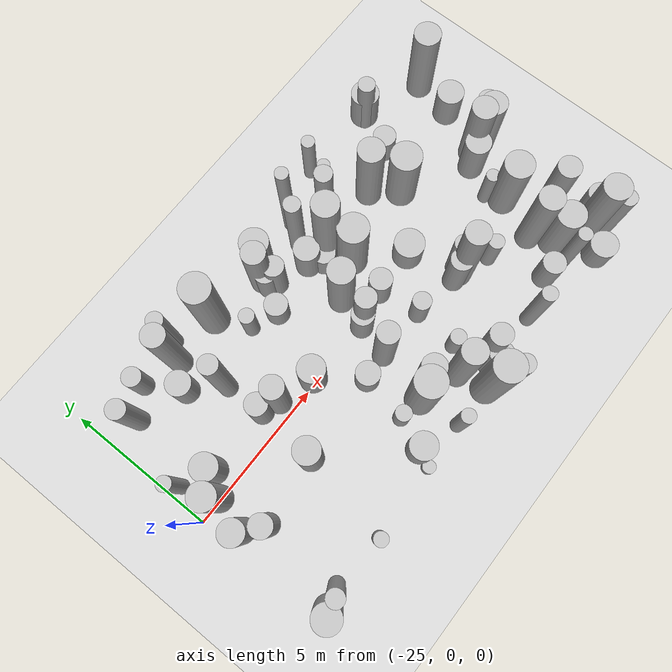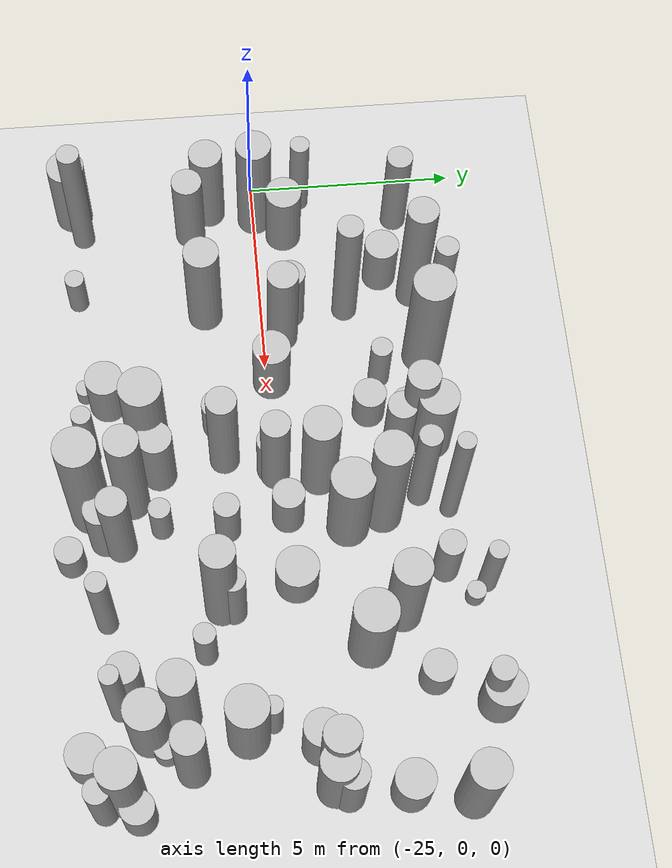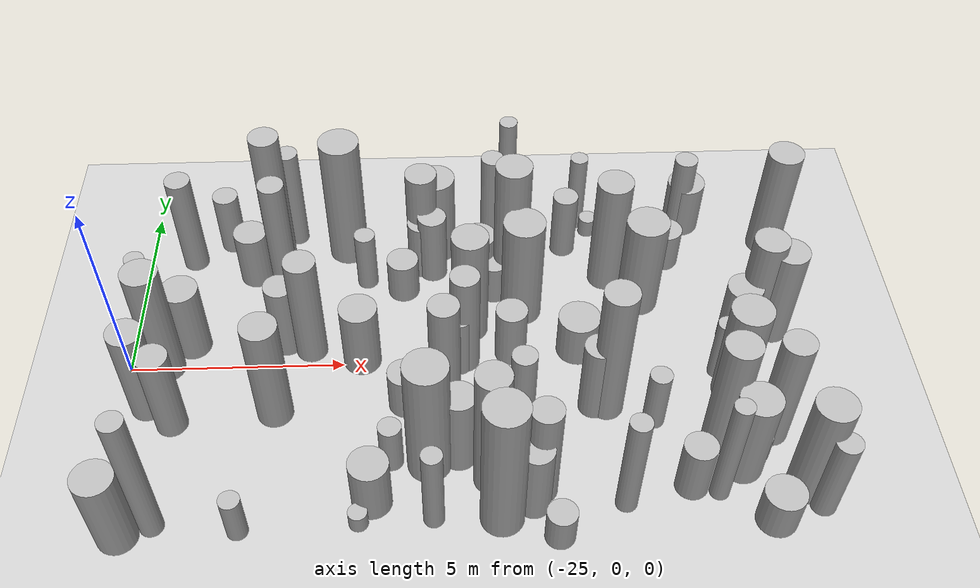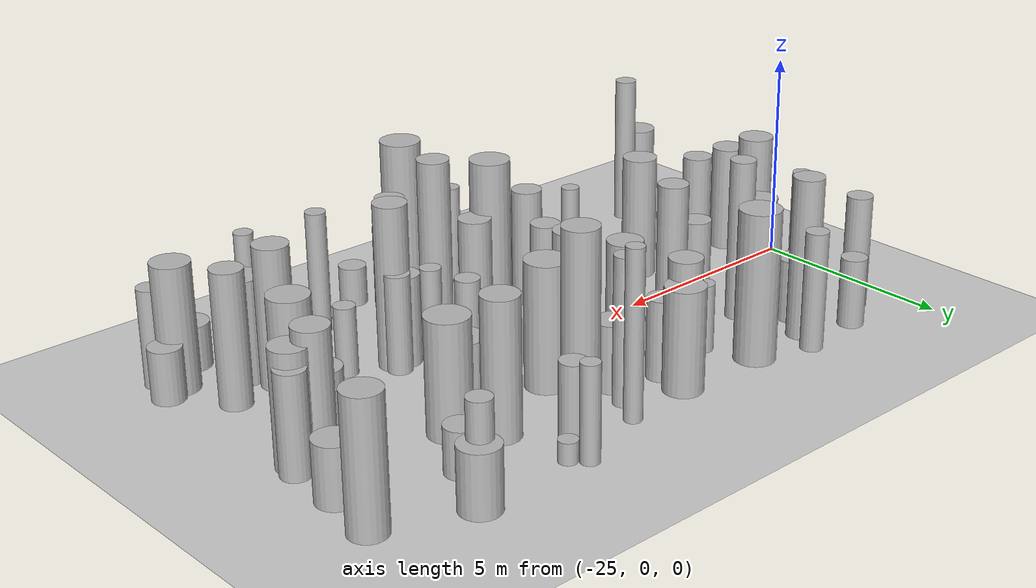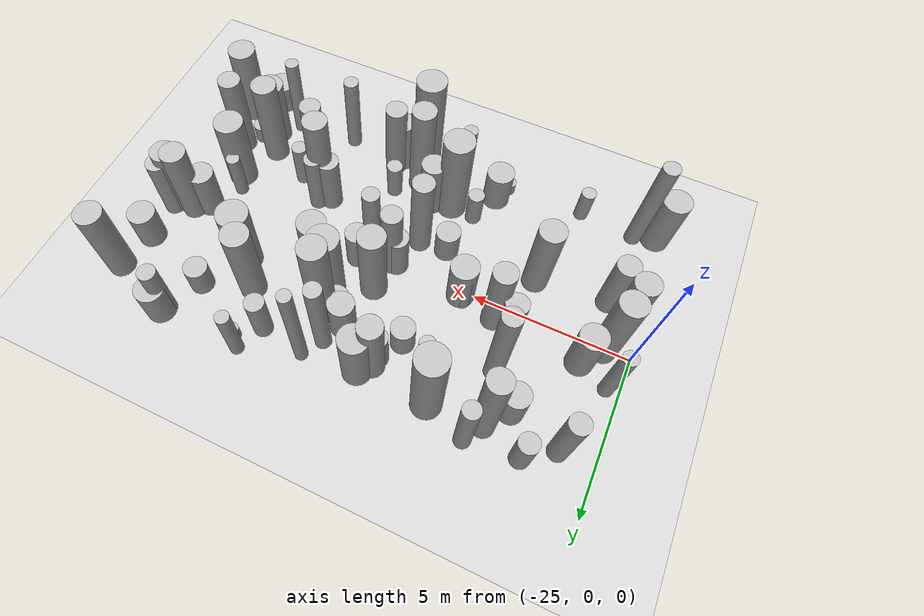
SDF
<sdf version="1.4">
 <world name="default">
  <include><uri>model://ground_plane</uri></include>
  <include><uri>model://sun</uri></include>
  <model name="forest">
   <static>true</static>
   <link name="cylinder1">
    <pose>-10.372897658311741 -2.2514441776818392 1.5751173394590154 0 0 0</pose>
    <visual name="visual">
     <geometry>
      <cylinder><radius>0.3677514361477285</radius><length>3.150234678918031</length></cylinder>
     </geometry>
    </visual>
    <collision name="collision">
     <geometry>
      <cylinder><radius>0.3677514361477285</radius><length>3.150234678918031</length></cylinder>
     </geometry>
     <max_contacts>0</max_contacts>
    </collision>
   </link>
   <link name="cylinder2">
    <pose>-21.35660350977835 4.323131204310551 1.4216955965478135 0 0 0</pose>
    <visual name="visual">
     <geometry>
      <cylinder><radius>0.2657979999063645</radius><length>2.843391193095627</length></cylinder>
     </geometry>
    </visual>
    <collision name="collision">
     <geometry>
      <cylinder><radius>0.2657979999063645</radius><length>2.843391193095627</length></cylinder>
     </geometry>
     <max_contacts>0</max_contacts>
    </collision>
   </link>
   <link name="cylinder3">
    <pose>-15.31565662004047 -4.739865447816892 0.4728887307520938 0 0 0</pose>
    <visual name="visual">
     <geometry>
      <cylinder><radius>0.3305696775943656</radius><length>0.9457774615041876</length></cylinder>
     </geometry>
    </visual>
    <collision name="collision">
     <geometry>
      <cylinder><radius>0.3305696775943656</radius><length>0.9457774615041876</length></cylinder>
     </geometry>
     <max_contacts>0</max_contacts>
    </collision>
   </link>
   <link name="cylinder8">
    <pose>-17.6399835858916 -1.1181731487474975 1.6408397410630924 0 0 0</pose>
    <visual name="visual">
     <geometry>
      <cylinder><radius>0.34879013332269104</radius><length>3.2816794821261848</length></cylinder>
     </geometry>
    </visual>
    <collision name="collision">
     <geometry>
      <cylinder><radius>0.34879013332269104</radius><length>3.2816794821261848</length></cylinder>
     </geometry>
     <max_contacts>0</max_contacts>
    </collision>
   </link>
   <link name="cylinder9">
    <pose>-21.418567242276666 2.0413545910556223 1.9441923723828283 0 0 0</pose>
    <visual name="visual">
     <geometry>
      <cylinder><radius>0.3000890618956727</radius><length>3.8883847447656565</length></cylinder>
     </geometry>
    </visual>
    <collision name="collision">
     <geometry>
      <cylinder><radius>0.3000890618956727</radius><length>3.8883847447656565</length></cylinder>
     </geometry>
     <max_contacts>0</max_contacts>
    </collision>
   </link>
   <link name="cylinder14">
    <pose>-21.72910784840053 3.717128631614173 1.9317601741943404 0 0 0</pose>
    <visual name="visual">
     <geometry>
      <cylinder><radius>0.3604419685028365</radius><length>3.863520348388681</length></cylinder>
     </geometry>
    </visual>
    <collision name="collision">
     <geometry>
      <cylinder><radius>0.3604419685028365</radius><length>3.863520348388681</length></cylinder>
     </geometry>
     <max_contacts>0</max_contacts>
    </collision>
   </link>
   <link name="cylinder21">
    <pose>-12.031961741088226 3.194976193978807 0.5398428350440663 0 0 0</pose>
    <visual name="visual">
     <geometry>
      <cylinder><radius>0.3801661684491565</radius><length>1.0796856700881325</length></cylinder>
     </geometry>
    </visual>
    <collision name="collision">
     <geometry>
      <cylinder><radius>0.3801661684491565</radius><length>1.0796856700881325</length></cylinder>
     </geometry>
     <max_contacts>0</max_contacts>
    </collision>
   </link>
   <link name="cylinder28">
    <pose>-22.999633626282684 4.128262922538253 0.8400408961245629 0 0 0</pose>
    <visual name="visual">
     <geometry>
      <cylinder><radius>0.3103891382681767</radius><length>1.6800817922491258</length></cylinder>
     </geometry>
    </visual>
    <collision name="collision">
     <geometry>
      <cylinder><radius>0.3103891382681767</radius><length>1.6800817922491258</length></cylinder>
     </geometry>
     <max_contacts>0</max_contacts>
    </collision>
   </link>
   <link name="cylinder32">
    <pose>-9.584879010355568 1.0462139949960854 1.174111556515456 0 0 0</pose>
    <visual name="visual">
     <geometry>
      <cylinder><radius>0.3442459100977423</radius><length>2.348223113030912</length></cylinder>
     </geometry>
    </visual>
    <collision name="collision">
     <geometry>
      <cylinder><radius>0.3442459100977423</radius><length>2.348223113030912</length></cylinder>
     </geometry>
     <max_contacts>0</max_contacts>
    </collision>
   </link>
   <link name="cylinder35">
    <pose>-13.98275207800716 -1.4099963655659433 1.930059043675803 0 0 0</pose>
    <visual name="visual">
     <geometry>
      <cylinder><radius>0.3846217041713943</radius><length>3.860118087351606</length></cylinder>
     </geometry>
    </visual>
    <collision name="collision">
     <geometry>
      <cylinder><radius>0.3846217041713943</radius><length>3.860118087351606</length></cylinder>
     </geometry>
     <max_contacts>0</max_contacts>
    </collision>
   </link>
   <link name="cylinder39">
    <pose>-16.748765194154092 2.621964411362523 0.8012393157230397 0 0 0</pose>
    <visual name="visual">
     <geometry>
      <cylinder><radius>0.4158010496673338</radius><length>1.6024786314460795</length></cylinder>
     </geometry>
    </visual>
    <collision name="collision">
     <geometry>
      <cylinder><radius>0.4158010496673338</radius><length>1.6024786314460795</length></cylinder>
     </geometry>
     <max_contacts>0</max_contacts>
    </collision>
   </link>
   <link name="cylinder43">
    <pose>-19.71796774710507 0.3110879446256192 0.7624264279020374 0 0 0</pose>
    <visual name="visual">
     <geometry>
      <cylinder><radius>0.2364860129090609</radius><length>1.5248528558040748</length></cylinder>
     </geometry>
    </visual>
    <collision name="collision">
     <geometry>
      <cylinder><radius>0.2364860129090609</radius><length>1.5248528558040748</length></cylinder>
     </geometry>
     <max_contacts>0</max_contacts>
    </collision>
   </link>
   <link name="cylinder44">
    <pose>-17.012740371954205 1.0431191071362802 1.5581251016779272 0 0 0</pose>
    <visual name="visual">
     <geometry>
      <cylinder><radius>0.4273241364926528</radius><length>3.1162502033558543</length></cylinder>
     </geometry>
    </visual>
    <collision name="collision">
     <geometry>
      <cylinder><radius>0.4273241364926528</radius><length>3.1162502033558543</length></cylinder>
     </geometry>
     <max_contacts>0</max_contacts>
    </collision>
   </link>
   <link name="cylinder57">
    <pose>-15.966854620602138 2.4335190814512897 1.9659533005793128 0 0 0</pose>
    <visual name="visual">
     <geometry>
      <cylinder><radius>0.42633022457370945</radius><length>3.9319066011586257</length></cylinder>
     </geometry>
    </visual>
    <collision name="collision">
     <geometry>
      <cylinder><radius>0.42633022457370945</radius><length>3.9319066011586257</length></cylinder>
     </geometry>
     <max_contacts>0</max_contacts>
    </collision>
   </link>
   <link name="cylinder64">
    <pose>-22.082502001315603 -4.403343819644552 0.613707244978996 0 0 0</pose>
    <visual name="visual">
     <geometry>
      <cylinder><radius>0.2333413649471318</radius><length>1.227414489957992</length></cylinder>
     </geometry>
    </visual>
    <collision name="collision">
     <geometry>
      <cylinder><radius>0.2333413649471318</radius><length>1.227414489957992</length></cylinder>
     </geometry>
     <max_contacts>0</max_contacts>
    </collision>
   </link>
   <link name="cylinder66">
    <pose>-17.37058964714589 -2.6521520822557063 1.0960785140175782 0 0 0</pose>
    <visual name="visual">
     <geometry>
      <cylinder><radius>0.3983850361801018</radius><length>2.1921570280351563</length></cylinder>
     </geometry>
    </visual>
    <collision name="collision">
     <geometry>
      <cylinder><radius>0.3983850361801018</radius><length>2.1921570280351563</length></cylinder>
     </geometry>
     <max_contacts>0</max_contacts>
    </collision>
   </link>
   <link name="cylinder67">
    <pose>-9.769559506569225 0.7704495770269446 1.343385655164318 0 0 0</pose>
    <visual name="visual">
     <geometry>
      <cylinder><radius>0.4213548860620411</radius><length>2.686771310328636</length></cylinder>
     </geometry>
    </visual>
    <collision name="collision">
     <geometry>
      <cylinder><radius>0.4213548860620411</radius><length>2.686771310328636</length></cylinder>
     </geometry>
     <max_contacts>0</max_contacts>
    </collision>
   </link>
   <link name="cylinder68">
    <pose>-10.253609969160799 0.8501133190586216 1.4957817800127082 0 0 0</pose>
    <visual name="visual">
     <geometry>
      <cylinder><radius>0.4072376539695209</radius><length>2.9915635600254165</length></cylinder>
     </geometry>
    </visual>
    <collision name="collision">
     <geometry>
      <cylinder><radius>0.4072376539695209</radius><length>2.9915635600254165</length></cylinder>
     </geometry>
     <max_contacts>0</max_contacts>
    </collision>
   </link>
   <link name="cylinder74">
    <pose>-15.814036391748687 -3.9410867435343544 1.0164899861445449 0 0 0</pose>
    <visual name="visual">
     <geometry>
      <cylinder><radius>0.3721718367374985</radius><length>2.0329799722890898</length></cylinder>
     </geometry>
    </visual>
    <collision name="collision">
     <geometry>
      <cylinder><radius>0.3721718367374985</radius><length>2.0329799722890898</length></cylinder>
     </geometry>
     <max_contacts>0</max_contacts>
    </collision>
   </link>
   <link name="cylinder76">
    <pose>-11.383243736141392 4.5109272070521005 0.7206859160088545 0 0 0</pose>
    <visual name="visual">
     <geometry>
      <cylinder><radius>0.46101447124008627</radius><length>1.441371832017709</length></cylinder>
     </geometry>
    </visual>
    <collision name="collision">
     <geometry>
      <cylinder><radius>0.46101447124008627</radius><length>1.441371832017709</length></cylinder>
     </geometry>
     <max_contacts>0</max_contacts>
    </collision>
   </link>
   <link name="cylinder78">
    <pose>-18.608237049293574 2.349809017381528 0.5510838272784618 0 0 0</pose>
    <visual name="visual">
     <geometry>
      <cylinder><radius>0.3822267673320422</radius><length>1.1021676545569237</length></cylinder>
     </geometry>
    </visual>
    <collision name="collision">
     <geometry>
      <cylinder><radius>0.3822267673320422</radius><length>1.1021676545569237</length></cylinder>
     </geometry>
     <max_contacts>0</max_contacts>
    </collision>
   </link>
   <link name="cylinder79">
    <pose>-14.160204888733425 4.617581358205619 1.1128946065807324 0 0 0</pose>
    <visual name="visual">
     <geometry>
      <cylinder><radius>0.21860928002505953</radius><length>2.2257892131614647</length></cylinder>
     </geometry>
    </visual>
    <collision name="collision">
     <geometry>
      <cylinder><radius>0.21860928002505953</radius><length>2.2257892131614647</length></cylinder>
     </geometry>
     <max_contacts>0</max_contacts>
    </collision>
   </link>
   <link name="cylinder83">
    <pose>-18.108542652122683 3.4148444649810408 1.445654301262922 0 0 0</pose>
    <visual name="visual">
     <geometry>
      <cylinder><radius>0.38112671923198294</radius><length>2.891308602525844</length></cylinder>
     </geometry>
    </visual>
    <collision name="collision">
     <geometry>
      <cylinder><radius>0.38112671923198294</radius><length>2.891308602525844</length></cylinder>
     </geometry>
     <max_contacts>0</max_contacts>
    </collision>
   </link>
   <link name="cylinder84">
    <pose>-16.07810474643923 0.25014213677787644 0.7625150647929921 0 0 0</pose>
    <visual name="visual">
     <geometry>
      <cylinder><radius>0.37070595839633025</radius><length>1.5250301295859843</length></cylinder>
     </geometry>
    </visual>
    <collision name="collision">
     <geometry>
      <cylinder><radius>0.37070595839633025</radius><length>1.5250301295859843</length></cylinder>
     </geometry>
     <max_contacts>0</max_contacts>
    </collision>
   </link>
   <link name="cylinder85">
    <pose>-18.12529728588368 3.1314375955831135 0.7846715255426591 0 0 0</pose>
    <visual name="visual">
     <geometry>
      <cylinder><radius>0.35187008169221745</radius><length>1.5693430510853181</length></cylinder>
     </geometry>
    </visual>
    <collision name="collision">
     <geometry>
      <cylinder><radius>0.35187008169221745</radius><length>1.5693430510853181</length></cylinder>
     </geometry>
     <max_contacts>0</max_contacts>
    </collision>
   </link>
   <link name="cylinder90">
    <pose>-16.379598077183523 2.2488449342389805 0.5465454976978354 0 0 0</pose>
    <visual name="visual">
     <geometry>
      <cylinder><radius>0.38060296094125545</radius><length>1.093090995395671</length></cylinder>
     </geometry>
    </visual>
    <collision name="collision">
     <geometry>
      <cylinder><radius>0.38060296094125545</radius><length>1.093090995395671</length></cylinder>
     </geometry>
     <max_contacts>0</max_contacts>
    </collision>
   </link>
   <link name="cylinder95">
    <pose>-23.895843019327668 -4.2280982885799165 1.8820095768581733 0 0 0</pose>
    <visual name="visual">
     <geometry>
      <cylinder><radius>0.26500982018076513</radius><length>3.7640191537163465</length></cylinder>
     </geometry>
    </visual>
    <collision name="collision">
     <geometry>
      <cylinder><radius>0.26500982018076513</radius><length>3.7640191537163465</length></cylinder>
     </geometry>
     <max_contacts>0</max_contacts>
    </collision>
   </link>
   <link name="cylinder96">
    <pose>-21.51850971061447 -1.3422147471543666 1.5119820932744217 0 0 0</pose>
    <visual name="visual">
     <geometry>
      <cylinder><radius>0.4138400525968138</radius><length>3.0239641865488434</length></cylinder>
     </geometry>
    </visual>
    <collision name="collision">
     <geometry>
      <cylinder><radius>0.4138400525968138</radius><length>3.0239641865488434</length></cylinder>
     </geometry>
     <max_contacts>0</max_contacts>
    </collision>
   </link>
   <link name="cylinder97">
    <pose>-10.70075296204921 -4.4935738668824445 0.5298968019769277 0 0 0</pose>
    <visual name="visual">
     <geometry>
      <cylinder><radius>0.4510335230470263</radius><length>1.0597936039538554</length></cylinder>
     </geometry>
    </visual>
    <collision name="collision">
     <geometry>
      <cylinder><radius>0.4510335230470263</radius><length>1.0597936039538554</length></cylinder>
     </geometry>
     <max_contacts>0</max_contacts>
    </collision>
   </link>
   <link name="cylinder98">
    <pose>-16.502737827829627 -4.254905252396982 1.9555405175638287 0 0 0</pose>
    <visual name="visual">
     <geometry>
      <cylinder><radius>0.4796865917493809</radius><length>3.9110810351276575</length></cylinder>
     </geometry>
    </visual>
    <collision name="collision">
     <geometry>
      <cylinder><radius>0.4796865917493809</radius><length>3.9110810351276575</length></cylinder>
     </geometry>
     <max_contacts>0</max_contacts>
    </collision>
   </link>
   <link name="cylinder106">
    <pose>-23.893410646277335 3.501970404676122 1.387999228371254 0 0 0</pose>
    <visual name="visual">
     <geometry>
      <cylinder><radius>0.3066898569023757</radius><length>2.775998456742508</length></cylinder>
     </geometry>
    </visual>
    <collision name="collision">
     <geometry>
      <cylinder><radius>0.3066898569023757</radius><length>2.775998456742508</length></cylinder>
     </geometry>
     <max_contacts>0</max_contacts>
    </collision>
   </link>
   <link name="cylinder108">
    <pose>-23.829874784142525 -1.5747651771766904 1.2037131255152091 0 0 0</pose>
    <visual name="visual">
     <geometry>
      <cylinder><radius>0.3624447436565988</radius><length>2.4074262510304183</length></cylinder>
     </geometry>
    </visual>
    <collision name="collision">
     <geometry>
      <cylinder><radius>0.3624447436565988</radius><length>2.4074262510304183</length></cylinder>
     </geometry>
     <max_contacts>0</max_contacts>
    </collision>
   </link>
   <link name="cylinder109">
    <pose>-11.793365492406432 -3.7727641679153443 1.5415852262171064 0 0 0</pose>
    <visual name="visual">
     <geometry>
      <cylinder><radius>0.21869972268366522</radius><length>3.0831704524342127</length></cylinder>
     </geometry>
    </visual>
    <collision name="collision">
     <geometry>
      <cylinder><radius>0.21869972268366522</radius><length>3.0831704524342127</length></cylinder>
     </geometry>
     <max_contacts>0</max_contacts>
    </collision>
   </link>
   <link name="cylinder110">
    <pose>-19.270642421842116 -3.7800901301655907 0.738888708003151 0 0 0</pose>
    <visual name="visual">
     <geometry>
      <cylinder><radius>0.44078350050917364</radius><length>1.477777416006302</length></cylinder>
     </geometry>
    </visual>
    <collision name="collision">
     <geometry>
      <cylinder><radius>0.44078350050917364</radius><length>1.477777416006302</length></cylinder>
     </geometry>
     <max_contacts>0</max_contacts>
    </collision>
   </link>
   <link name="cylinder111">
    <pose>-14.552662349414636 3.7103574064113385 0.8955943260405022 0 0 0</pose>
    <visual name="visual">
     <geometry>
      <cylinder><radius>0.3077023302518154</radius><length>1.7911886520810043</length></cylinder>
     </geometry>
    </visual>
    <collision name="collision">
     <geometry>
      <cylinder><radius>0.3077023302518154</radius><length>1.7911886520810043</length></cylinder>
     </geometry>
     <max_contacts>0</max_contacts>
    </collision>
   </link>
   <link name="cylinder116">
    <pose>-9.331090238398154 3.709309955117039 1.5171889855288772 0 0 0</pose>
    <visual name="visual">
     <geometry>
      <cylinder><radius>0.43068877749872103</radius><length>3.0343779710577543</length></cylinder>
     </geometry>
    </visual>
    <collision name="collision">
     <geometry>
      <cylinder><radius>0.43068877749872103</radius><length>3.0343779710577543</length></cylinder>
     </geometry>
     <max_contacts>0</max_contacts>
    </collision>
   </link>
   <link name="cylinder118">
    <pose>-13.833727527082107 -3.9867885429856975 1.4684590824791435 0 0 0</pose>
    <visual name="visual">
     <geometry>
      <cylinder><radius>0.2405756567187885</radius><length>2.936918164958287</length></cylinder>
     </geometry>
    </visual>
    <collision name="collision">
     <geometry>
      <cylinder><radius>0.2405756567187885</radius><length>2.936918164958287</length></cylinder>
     </geometry>
     <max_contacts>0</max_contacts>
    </collision>
   </link>
   <link name="cylinder120">
    <pose>-18.030748601132284 -2.8542827955766947 1.7192518039806988 0 0 0</pose>
    <visual name="visual">
     <geometry>
      <cylinder><radius>0.487368415609674</radius><length>3.4385036079613975</length></cylinder>
     </geometry>
    </visual>
    <collision name="collision">
     <geometry>
      <cylinder><radius>0.487368415609674</radius><length>3.4385036079613975</length></cylinder>
     </geometry>
     <max_contacts>0</max_contacts>
    </collision>
   </link>
   <link name="cylinder122">
    <pose>-11.527730041840844 4.367370500037939 1.1604866353640482 0 0 0</pose>
    <visual name="visual">
     <geometry>
      <cylinder><radius>0.27969637668919556</radius><length>2.3209732707280963</length></cylinder>
     </geometry>
    </visual>
    <collision name="collision">
     <geometry>
      <cylinder><radius>0.27969637668919556</radius><length>2.3209732707280963</length></cylinder>
     </geometry>
     <max_contacts>0</max_contacts>
    </collision>
   </link>
   <link name="cylinder123">
    <pose>-19.542358971119654 -4.300156067876012 0.23278447225285476 0 0 0</pose>
    <visual name="visual">
     <geometry>
      <cylinder><radius>0.21340984291934115</radius><length>0.4655689445057095</length></cylinder>
     </geometry>
    </visual>
    <collision name="collision">
     <geometry>
      <cylinder><radius>0.21340984291934115</radius><length>0.4655689445057095</length></cylinder>
     </geometry>
     <max_contacts>0</max_contacts>
    </collision>
   </link>
   <link name="cylinder124">
    <pose>-18.549845659216757 -1.1888499416494658 0.5839612516701087 0 0 0</pose>
    <visual name="visual">
     <geometry>
      <cylinder><radius>0.39211995531191624</radius><length>1.1679225033402174</length></cylinder>
     </geometry>
    </visual>
    <collision name="collision">
     <geometry>
      <cylinder><radius>0.39211995531191624</radius><length>1.1679225033402174</length></cylinder>
     </geometry>
     <max_contacts>0</max_contacts>
    </collision>
   </link>
   <link name="cylinder126">
    <pose>-12.95649090581179 -1.8150322220541604 0.8158202827196336 0 0 0</pose>
    <visual name="visual">
     <geometry>
      <cylinder><radius>0.2522773835083544</radius><length>1.6316405654392672</length></cylinder>
     </geometry>
    </visual>
    <collision name="collision">
     <geometry>
      <cylinder><radius>0.2522773835083544</radius><length>1.6316405654392672</length></cylinder>
     </geometry>
     <max_contacts>0</max_contacts>
    </collision>
   </link>
   <link name="cylinder128">
    <pose>-17.949186122343363 -4.2390769950784275 1.1881820199443665 0 0 0</pose>
    <visual name="visual">
     <geometry>
      <cylinder><radius>0.22883874437084598</radius><length>2.376364039888733</length></cylinder>
     </geometry>
    </visual>
    <collision name="collision">
     <geometry>
      <cylinder><radius>0.22883874437084598</radius><length>2.376364039888733</length></cylinder>
     </geometry>
     <max_contacts>0</max_contacts>
    </collision>
   </link>
   <link name="cylinder129">
    <pose>-14.267042877043117 -1.3793809067357676 1.0671423833787101 0 0 0</pose>
    <visual name="visual">
     <geometry>
      <cylinder><radius>0.3571874576832468</radius><length>2.1342847667574203</length></cylinder>
     </geometry>
    </visual>
    <collision name="collision">
     <geometry>
      <cylinder><radius>0.3571874576832468</radius><length>2.1342847667574203</length></cylinder>
     </geometry>
     <max_contacts>0</max_contacts>
    </collision>
   </link>
   <link name="cylinder130">
    <pose>-20.01687623721766 3.8001239294621723 1.7981289210568585 0 0 0</pose>
    <visual name="visual">
     <geometry>
      <cylinder><radius>0.48274602378853965</radius><length>3.596257842113717</length></cylinder>
     </geometry>
    </visual>
    <collision name="collision">
     <geometry>
      <cylinder><radius>0.48274602378853965</radius><length>3.596257842113717</length></cylinder>
     </geometry>
     <max_contacts>0</max_contacts>
    </collision>
   </link>
   <link name="cylinder131">
    <pose>-16.01725249500911 -2.658090067144548 0.6682624049211567 0 0 0</pose>
    <visual name="visual">
     <geometry>
      <cylinder><radius>0.25566634629384316</radius><length>1.3365248098423135</length></cylinder>
     </geometry>
    </visual>
    <collision name="collision">
     <geometry>
      <cylinder><radius>0.25566634629384316</radius><length>1.3365248098423135</length></cylinder>
     </geometry>
     <max_contacts>0</max_contacts>
    </collision>
   </link>
   <link name="cylinder133">
    <pose>-13.895907692297078 -1.1406419302515172 1.1601147606564504 0 0 0</pose>
    <visual name="visual">
     <geometry>
      <cylinder><radius>0.29034785530568935</radius><length>2.3202295213129007</length></cylinder>
     </geometry>
    </visual>
    <collision name="collision">
     <geometry>
      <cylinder><radius>0.29034785530568935</radius><length>2.3202295213129007</length></cylinder>
     </geometry>
     <max_contacts>0</max_contacts>
    </collision>
   </link>
   <link name="cylinder140">
    <pose>-17.32036327218328 -0.019199488106458773 0.8428036856724864 0 0 0</pose>
    <visual name="visual">
     <geometry>
      <cylinder><radius>0.36663455523678024</radius><length>1.6856073713449728</length></cylinder>
     </geometry>
    </visual>
    <collision name="collision">
     <geometry>
      <cylinder><radius>0.36663455523678024</radius><length>1.6856073713449728</length></cylinder>
     </geometry>
     <max_contacts>0</max_contacts>
    </collision>
   </link>
   <link name="cylinder143">
    <pose>-13.857040491022431 4.302463179288141 0.249896122753953 0 0 0</pose>
    <visual name="visual">
     <geometry>
      <cylinder><radius>0.22252643316903653</radius><length>0.499792245507906</length></cylinder>
     </geometry>
    </visual>
    <collision name="collision">
     <geometry>
      <cylinder><radius>0.22252643316903653</radius><length>0.499792245507906</length></cylinder>
     </geometry>
     <max_contacts>0</max_contacts>
    </collision>
   </link>
   <link name="cylinder144">
    <pose>-14.489876557035691 0.32082263976899306 0.572960260095293 0 0 0</pose>
    <visual name="visual">
     <geometry>
      <cylinder><radius>0.4932109721042341</radius><length>1.145920520190586</length></cylinder>
     </geometry>
    </visual>
    <collision name="collision">
     <geometry>
      <cylinder><radius>0.4932109721042341</radius><length>1.145920520190586</length></cylinder>
     </geometry>
     <max_contacts>0</max_contacts>
    </collision>
   </link>
   <link name="cylinder149">
    <pose>-11.571877772088657 -2.405117808104608 1.6505482758308414 0 0 0</pose>
    <visual name="visual">
     <geometry>
      <cylinder><radius>0.40433378632942063</radius><length>3.301096551661683</length></cylinder>
     </geometry>
    </visual>
    <collision name="collision">
     <geometry>
      <cylinder><radius>0.40433378632942063</radius><length>3.301096551661683</length></cylinder>
     </geometry>
     <max_contacts>0</max_contacts>
    </collision>
   </link>
   <link name="cylinder150">
    <pose>-15.750463536416126 1.5974665990830648 1.4889202741377814 0 0 0</pose>
    <visual name="visual">
     <geometry>
      <cylinder><radius>0.49106587663184925</radius><length>2.9778405482755628</length></cylinder>
     </geometry>
    </visual>
    <collision name="collision">
     <geometry>
      <cylinder><radius>0.49106587663184925</radius><length>2.9778405482755628</length></cylinder>
     </geometry>
     <max_contacts>0</max_contacts>
    </collision>
   </link>
   <link name="cylinder152">
    <pose>-12.368900817915025 -3.598682546063785 0.7555453203937004 0 0 0</pose>
    <visual name="visual">
     <geometry>
      <cylinder><radius>0.369950080772114</radius><length>1.5110906407874007</length></cylinder>
     </geometry>
    </visual>
    <collision name="collision">
     <geometry>
      <cylinder><radius>0.369950080772114</radius><length>1.5110906407874007</length></cylinder>
     </geometry>
     <max_contacts>0</max_contacts>
    </collision>
   </link>
   <link name="cylinder153">
    <pose>-24.59358604466156 1.1869457252680595 1.2681930631751088 0 0 0</pose>
    <visual name="visual">
     <geometry>
      <cylinder><radius>0.23331477258955502</radius><length>2.5363861263502177</length></cylinder>
     </geometry>
    </visual>
    <collision name="collision">
     <geometry>
      <cylinder><radius>0.23331477258955502</radius><length>2.5363861263502177</length></cylinder>
     </geometry>
     <max_contacts>0</max_contacts>
    </collision>
   </link>
   <link name="cylinder154">
    <pose>-11.0175906956614 -1.0150244764791596 1.3869743795234124 0 0 0</pose>
    <visual name="visual">
     <geometry>
      <cylinder><radius>0.4740916741387144</radius><length>2.773948759046825</length></cylinder>
     </geometry>
    </visual>
    <collision name="collision">
     <geometry>
      <cylinder><radius>0.4740916741387144</radius><length>2.773948759046825</length></cylinder>
     </geometry>
     <max_contacts>0</max_contacts>
    </collision>
   </link>
   <link name="cylinder157">
    <pose>-24.149060110952636 0.04698790403143693 1.636321357155082 0 0 0</pose>
    <visual name="visual">
     <geometry>
      <cylinder><radius>0.41741315361408204</radius><length>3.272642714310164</length></cylinder>
     </geometry>
    </visual>
    <collision name="collision">
     <geometry>
      <cylinder><radius>0.41741315361408204</radius><length>3.272642714310164</length></cylinder>
     </geometry>
     <max_contacts>0</max_contacts>
    </collision>
   </link>
   <link name="cylinder159">
    <pose>-22.297645446423846 2.9798514149326474 0.7603351359252568 0 0 0</pose>
    <visual name="visual">
     <geometry>
      <cylinder><radius>0.4051297218123507</radius><length>1.5206702718505136</length></cylinder>
     </geometry>
    </visual>
    <collision name="collision">
     <geometry>
      <cylinder><radius>0.4051297218123507</radius><length>1.5206702718505136</length></cylinder>
     </geometry>
     <max_contacts>0</max_contacts>
    </collision>
   </link>
   <link name="cylinder161">
    <pose>-23.625957580531438 0.7222448785052435 0.9964385082675239 0 0 0</pose>
    <visual name="visual">
     <geometry>
      <cylinder><radius>0.4297899235904268</radius><length>1.9928770165350478</length></cylinder>
     </geometry>
    </visual>
    <collision name="collision">
     <geometry>
      <cylinder><radius>0.4297899235904268</radius><length>1.9928770165350478</length></cylinder>
     </geometry>
     <max_contacts>0</max_contacts>
    </collision>
   </link>
   <link name="cylinder167">
    <pose>-12.863710678554286 1.8226420935090504 1.3471564564107046 0 0 0</pose>
    <visual name="visual">
     <geometry>
      <cylinder><radius>0.49965761003082837</radius><length>2.694312912821409</length></cylinder>
     </geometry>
    </visual>
    <collision name="collision">
     <geometry>
      <cylinder><radius>0.49965761003082837</radius><length>2.694312912821409</length></cylinder>
     </geometry>
     <max_contacts>0</max_contacts>
    </collision>
   </link>
   <link name="cylinder174">
    <pose>-9.632264680808799 -4.17577959914929 1.1578379688963665 0 0 0</pose>
    <visual name="visual">
     <geometry>
      <cylinder><radius>0.28239001529088115</radius><length>2.315675937792733</length></cylinder>
     </geometry>
    </visual>
    <collision name="collision">
     <geometry>
      <cylinder><radius>0.28239001529088115</radius><length>2.315675937792733</length></cylinder>
     </geometry>
     <max_contacts>0</max_contacts>
    </collision>
   </link>
   <link name="cylinder175">
    <pose>-21.373259017529634 0.6959300191665605 1.0200881240365332 0 0 0</pose>
    <visual name="visual">
     <geometry>
      <cylinder><radius>0.3575295591652773</radius><length>2.0401762480730663</length></cylinder>
     </geometry>
    </visual>
    <collision name="collision">
     <geometry>
      <cylinder><radius>0.3575295591652773</radius><length>2.0401762480730663</length></cylinder>
     </geometry>
     <max_contacts>0</max_contacts>
    </collision>
   </link>
   <link name="cylinder178">
    <pose>-17.75922702610221 3.746498888192777 1.2297895948213478 0 0 0</pose>
    <visual name="visual">
     <geometry>
      <cylinder><radius>0.46195410841657153</radius><length>2.4595791896426955</length></cylinder>
     </geometry>
    </visual>
    <collision name="collision">
     <geometry>
      <cylinder><radius>0.46195410841657153</radius><length>2.4595791896426955</length></cylinder>
     </geometry>
     <max_contacts>0</max_contacts>
    </collision>
   </link>
   <link name="cylinder184">
    <pose>-17.872349738021764 2.9821347308526427 0.9528011375390422 0 0 0</pose>
    <visual name="visual">
     <geometry>
      <cylinder><radius>0.348680739913959</radius><length>1.9056022750780843</length></cylinder>
     </geometry>
    </visual>
    <collision name="collision">
     <geometry>
      <cylinder><radius>0.348680739913959</radius><length>1.9056022750780843</length></cylinder>
     </geometry>
     <max_contacts>0</max_contacts>
    </collision>
   </link>
   <link name="cylinder186">
    <pose>-10.695817463542873 0.5297608171348305 0.9095457516489598 0 0 0</pose>
    <visual name="visual">
     <geometry>
      <cylinder><radius>0.42243122312915266</radius><length>1.8190915032979196</length></cylinder>
     </geometry>
    </visual>
    <collision name="collision">
     <geometry>
      <cylinder><radius>0.42243122312915266</radius><length>1.8190915032979196</length></cylinder>
     </geometry>
     <max_contacts>0</max_contacts>
    </collision>
   </link>
   <link name="cylinder191">
    <pose>-9.462596003449331 -3.4376732248600628 0.622352232248318 0 0 0</pose>
    <visual name="visual">
     <geometry>
      <cylinder><radius>0.38166408208643776</radius><length>1.244704464496636</length></cylinder>
     </geometry>
    </visual>
    <collision name="collision">
     <geometry>
      <cylinder><radius>0.38166408208643776</radius><length>1.244704464496636</length></cylinder>
     </geometry>
     <max_contacts>0</max_contacts>
    </collision>
   </link>
   <link name="cylinder192">
    <pose>-11.277723335458688 -0.46185209763200863 0.8497199690034625 0 0 0</pose>
    <visual name="visual">
     <geometry>
      <cylinder><radius>0.2154237136417006</radius><length>1.699439938006925</length></cylinder>
     </geometry>
    </visual>
    <collision name="collision">
     <geometry>
      <cylinder><radius>0.2154237136417006</radius><length>1.699439938006925</length></cylinder>
     </geometry>
     <max_contacts>0</max_contacts>
    </collision>
   </link>
   <link name="cylinder197">
    <pose>-9.91979972433033 -3.707764194606157 1.4852313796833845 0 0 0</pose>
    <visual name="visual">
     <geometry>
      <cylinder><radius>0.4463137846219502</radius><length>2.970462759366769</length></cylinder>
     </geometry>
    </visual>
    <collision name="collision">
     <geometry>
      <cylinder><radius>0.4463137846219502</radius><length>2.970462759366769</length></cylinder>
     </geometry>
     <max_contacts>0</max_contacts>
    </collision>
   </link>
   <link name="cylinder200">
    <pose>-20.163782944879443 3.871565364278039 0.8369986225554551 0 0 0</pose>
    <visual name="visual">
     <geometry>
      <cylinder><radius>0.3028888654990975</radius><length>1.6739972451109102</length></cylinder>
     </geometry>
    </visual>
    <collision name="collision">
     <geometry>
      <cylinder><radius>0.3028888654990975</radius><length>1.6739972451109102</length></cylinder>
     </geometry>
     <max_contacts>0</max_contacts>
    </collision>
   </link>
   <link name="cylinder202">
    <pose>-16.013413595531375 3.972378896508392 1.9696293918522103 0 0 0</pose>
    <visual name="visual">
     <geometry>
      <cylinder><radius>0.20929815443634525</radius><length>3.9392587837044206</length></cylinder>
     </geometry>
    </visual>
    <collision name="collision">
     <geometry>
      <cylinder><radius>0.20929815443634525</radius><length>3.9392587837044206</length></cylinder>
     </geometry>
     <max_contacts>0</max_contacts>
    </collision>
   </link>
   <link name="cylinder203">
    <pose>-18.854820652729476 -2.7477917542837904 0.6482398149146233 0 0 0</pose>
    <visual name="visual">
     <geometry>
      <cylinder><radius>0.2609914682218389</radius><length>1.2964796298292467</length></cylinder>
     </geometry>
    </visual>
    <collision name="collision">
     <geometry>
      <cylinder><radius>0.2609914682218389</radius><length>1.2964796298292467</length></cylinder>
     </geometry>
     <max_contacts>0</max_contacts>
    </collision>
   </link>
   <link name="cylinder205">
    <pose>-15.873066632141224 -1.1540410551292926 0.8046753623491432 0 0 0</pose>
    <visual name="visual">
     <geometry>
      <cylinder><radius>0.29817964061979546</radius><length>1.6093507246982863</length></cylinder>
     </geometry>
    </visual>
    <collision name="collision">
     <geometry>
      <cylinder><radius>0.29817964061979546</radius><length>1.6093507246982863</length></cylinder>
     </geometry>
     <max_contacts>0</max_contacts>
    </collision>
   </link>
   <link name="cylinder206">
    <pose>-13.572449192086362 2.6315824045012084 1.6027566913606879 0 0 0</pose>
    <visual name="visual">
     <geometry>
      <cylinder><radius>0.4270745734160293</radius><length>3.2055133827213758</length></cylinder>
     </geometry>
    </visual>
    <collision name="collision">
     <geometry>
      <cylinder><radius>0.4270745734160293</radius><length>3.2055133827213758</length></cylinder>
     </geometry>
     <max_contacts>0</max_contacts>
    </collision>
   </link>
   <link name="cylinder209">
    <pose>-17.15840351525784 0.03379380991039582 1.4659046909844744 0 0 0</pose>
    <visual name="visual">
     <geometry>
      <cylinder><radius>0.3373695006749819</radius><length>2.931809381968949</length></cylinder>
     </geometry>
    </visual>
    <collision name="collision">
     <geometry>
      <cylinder><radius>0.3373695006749819</radius><length>2.931809381968949</length></cylinder>
     </geometry>
     <max_contacts>0</max_contacts>
    </collision>
   </link>
   <link name="cylinder213">
    <pose>-19.576394572697083 0.12969041874721388 0.9274461462333731 0 0 0</pose>
    <visual name="visual">
     <geometry>
      <cylinder><radius>0.44263371101302523</radius><length>1.8548922924667461</length></cylinder>
     </geometry>
    </visual>
    <collision name="collision">
     <geometry>
      <cylinder><radius>0.44263371101302523</radius><length>1.8548922924667461</length></cylinder>
     </geometry>
     <max_contacts>0</max_contacts>
    </collision>
   </link>
   <link name="cylinder215">
    <pose>-24.575125057350217 -4.450532662895079 1.1236351631285746 0 0 0</pose>
    <visual name="visual">
     <geometry>
      <cylinder><radius>0.4472581517457588</radius><length>2.247270326257149</length></cylinder>
     </geometry>
    </visual>
    <collision name="collision">
     <geometry>
      <cylinder><radius>0.4472581517457588</radius><length>2.247270326257149</length></cylinder>
     </geometry>
     <max_contacts>0</max_contacts>
    </collision>
   </link>
   <link name="cylinder216">
    <pose>-9.582707843337596 2.3732306071458904 0.6936457975875424 0 0 0</pose>
    <visual name="visual">
     <geometry><cylinder><radius>0.4445557341655</radius><length>1.3872915951750848</length></cylinder></geometry>
    </visual>
    <collision name="collision">
     <geometry><cylinder><radius>0.4445557341655</radius><length>1.3872915951750848</length></cylinder></geometry>
     <max_contacts>0</max_contacts>
    </collision>
   </link>
   <link name="cylinder217">
    <pose>-19.508616032911263 2.6869368758314778 0.8128019431205256 0 0 0</pose>
    <visual name="visual">
     <geometry>
      <cylinder><radius>0.2517854779245659</radius><length>1.6256038862410511</length></cylinder>
     </geometry>
    </visual>
    <collision name="collision">
     <geometry>
      <cylinder><radius>0.2517854779245659</radius><length>1.6256038862410511</length></cylinder>
     </geometry>
     <max_contacts>0</max_contacts>
    </collision>
   </link>
   <link name="cylinder219">
    <pose>-10.80655325952491 -2.7930554433512524 0.33690982764284105 0 0 0</pose>
    <visual name="visual">
     <geometry>
      <cylinder><radius>0.2847026929267592</radius><length>0.6738196552856821</length></cylinder>
     </geometry>
    </visual>
    <collision name="collision">
     <geometry>
      <cylinder><radius>0.2847026929267592</radius><length>0.6738196552856821</length></cylinder>
     </geometry>
     <max_contacts>0</max_contacts>
    </collision>
   </link>
   <link name="cylinder222">
    <pose>-20.784038204753575 0.48162674601477207 1.5180335992984435 0 0 0</pose>
    <visual name="visual">
     <geometry>
      <cylinder><radius>0.3670182692504027</radius><length>3.036067198596887</length></cylinder>
     </geometry>
    </visual>
    <collision name="collision">
     <geometry>
      <cylinder><radius>0.3670182692504027</radius><length>3.036067198596887</length></cylinder>
     </geometry>
     <max_contacts>0</max_contacts>
    </collision>
   </link>
   <link name="cylinder225">
    <pose>-24.43087207937155 -1.0849118638458655 1.3212027511440243 0 0 0</pose>
    <visual name="visual">
     <geometry>
      <cylinder><radius>0.39856053532101077</radius><length>2.6424055022880486</length></cylinder>
     </geometry>
    </visual>
    <collision name="collision">
     <geometry>
      <cylinder><radius>0.39856053532101077</radius><length>2.6424055022880486</length></cylinder>
     </geometry>
     <max_contacts>0</max_contacts>
    </collision>
   </link>
   <link name="cylinder239">
    <pose>-15.629091203676982 -3.600263252212834 1.4522014438208164 0 0 0</pose>
    <visual name="visual">
     <geometry>
      <cylinder><radius>0.35123577129669026</radius><length>2.904402887641633</length></cylinder>
     </geometry>
    </visual>
    <collision name="collision">
     <geometry>
      <cylinder><radius>0.35123577129669026</radius><length>2.904402887641633</length></cylinder>
     </geometry>
     <max_contacts>0</max_contacts>
    </collision>
   </link>
   <link name="cylinder241">
    <pose>-11.199495333752745 -3.135467620896333 1.2251131957002757 0 0 0</pose>
    <visual name="visual">
     <geometry>
      <cylinder><radius>0.4610801447077854</radius><length>2.4502263914005513</length></cylinder>
     </geometry>
    </visual>
    <collision name="collision">
     <geometry>
      <cylinder><radius>0.4610801447077854</radius><length>2.4502263914005513</length></cylinder>
     </geometry>
     <max_contacts>0</max_contacts>
    </collision>
   </link>
   <link name="cylinder243">
    <pose>-16.41105588628902 3.313991097940983 1.7138328470817534 0 0 0</pose>
    <visual name="visual">
     <geometry>
      <cylinder><radius>0.26441346839589236</radius><length>3.427665694163507</length></cylinder>
     </geometry>
    </visual>
    <collision name="collision">
     <geometry>
      <cylinder><radius>0.26441346839589236</radius><length>3.427665694163507</length></cylinder>
     </geometry>
     <max_contacts>0</max_contacts>
    </collision>
   </link>
   <link name="cylinder248">
    <pose>-16.693156857476755 -3.2948372938638757 1.8290540067251442 0 0 0</pose>
    <visual name="visual">
     <geometry>
      <cylinder><radius>0.38951969991758634</radius><length>3.6581080134502884</length></cylinder>
     </geometry>
    </visual>
    <collision name="collision">
     <geometry>
      <cylinder><radius>0.38951969991758634</radius><length>3.6581080134502884</length></cylinder>
     </geometry>
     <max_contacts>0</max_contacts>
    </collision>
   </link>
  </model>
 </world>
</sdf>
